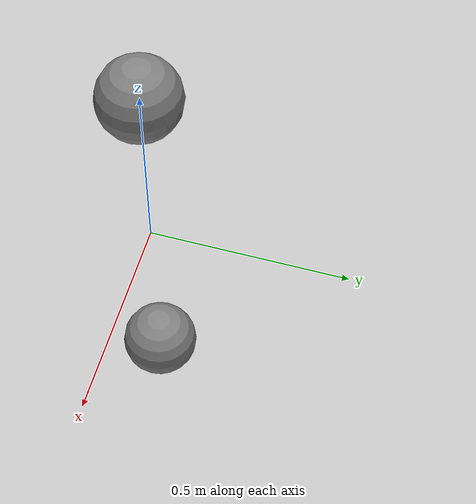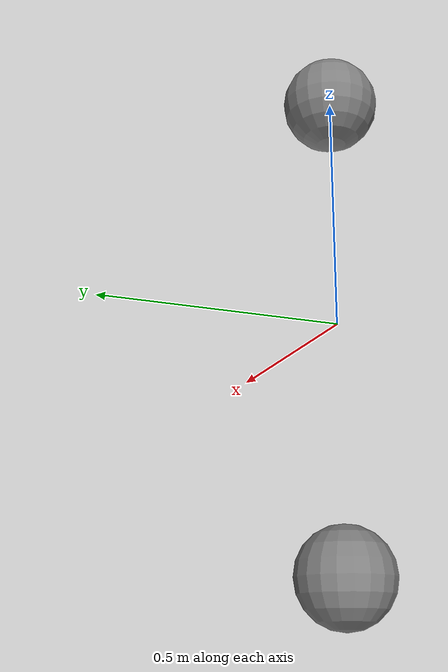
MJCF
<mujoco model="distance_zero">
            <option gravity="0 0 0" timestep="0.001"/>
            <worldbody>
                <body name="b1" pos="0 0 0.5">
                    <freejoint/>
                    <geom name="g1" type="sphere" size="0.1" mass="1.0"/>
                </body>
                <body name="b2" pos="0 0 -0.5">
                    <freejoint/>
                    <geom name="g2" type="sphere" size="0.1" mass="1.0"/>
                </body>
            </worldbody>
            <equality>
                <distance geom1="g1" geom2="g2" distance="0.0"/>
            </equality>
        </mujoco>
